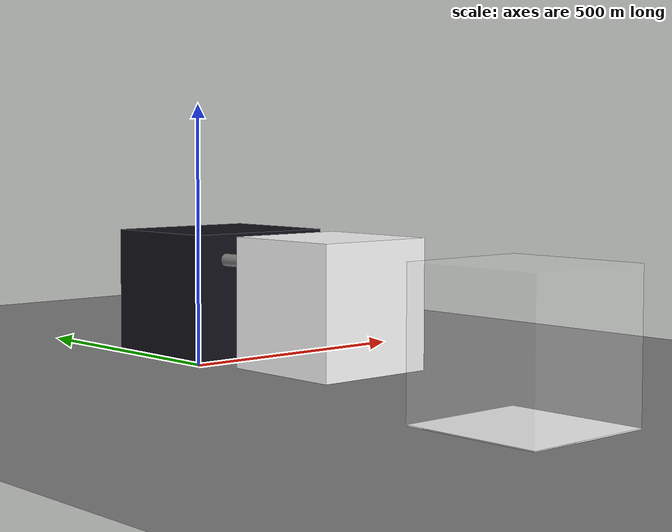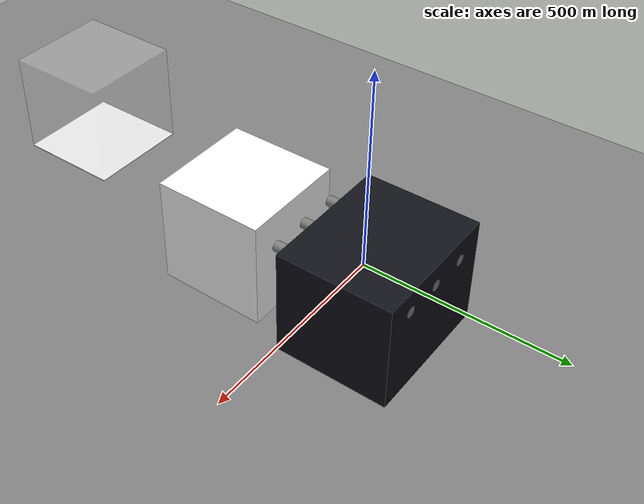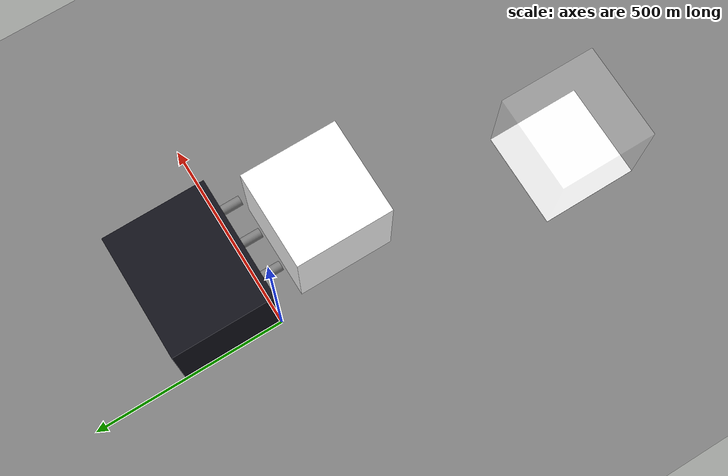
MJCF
<mujoco model="pushing_striker">
  <compiler inertiafromgeom="true" angle="radian" coordinate="local" meshdir="meshes/"/>
  <option timestep="0.01" gravity="0 0 0" iterations="20" integrator="Euler"/>

  <asset>
    <mesh file="push_box.stl"/>
    <mesh file="pushing_hand.stl"/>
    <mesh file="caster_wheel.stl"/>
    <mesh file="caster_middle.stl"/>
    <mesh file="caster_top.stl"/>

    <texture type="skybox" builtin="gradient" rgb1=".2 .3 .4" rgb2="1 1 1"
      width="100" height="100"/>
    <material name="MatViz" specular="1" shininess=".1" reflectance="0.5" rgba=".07 .07 .1 1"/>
  </asset>
  <default>
    <joint armature='0.04' damping="1" limited="true"/>
    <geom friction="0 0 0" density="300" margin="0.002" condim="1" contype="0" conaffinity="0"/>
    <default class ="vizNcoll">
      <geom material="MatViz" type="mesh" condim="3" contype="1" conaffinity="1" margin="0.001"/>
    </default>
  </default>

  <worldbody>
    <light diffuse=".5 .5 .5" pos="0 0 3" dir="0 0 -1"/>
    <geom name="table" type="plane" pos="0 0 0" size="1000 2000 1000" contype="1" conaffinity="1"/>

    <body name="push_box" childclass="vizNcoll" pos="0 0 0">
      <geom mesh="push_box"/>
    </body>
    <body name="pushing_hand_1" pos="68 260 200" axisangle="1 0 0 1.570796">
      <joint name="slider_1" type="slide" pos="0 0 0" axis="1 0 0" range="0 100" damping="1.0" limited="true"/>
      <geom mesh="pushing_hand" type="mesh"/>

    </body>
    <body name="pushing_hand_2" pos="158 260 200" axisangle="1 0 0 1.570796">
      <joint name="slider_2" type="slide" pos="0 0 0" axis="1 0 0" range="0 100" damping="1.0" limited="true"/>
      <geom mesh="pushing_hand" type="mesh"/>
    </body>
    <body name="pushing_hand_3" pos="248 260 200" axisangle="1 0 0 1.570796">
      <joint name="slider_3" type="slide" pos="0 0 0" axis="1 0 0" range="0 100" damping="1.0" limited="true"/>
      <geom mesh="pushing_hand" type="mesh"/>
    </body>

    <body name="object" pos="158 -200 125" >
      <geom type="box" rgba="1 1 1 1" pos="0 0 0" size="125 125 125" contype="1" conaffinity="0"/>
      <joint name="obj_slidey" armature="0.1" type="slide" pos="0 0 0" axis="0 1 0" range="-10321.3 10300" damping="0.5"/>
      <joint name="obj_slidex" armature="0.1" type="slide" pos="0 0 0" axis="1 0 0" range="-10321.3 10300" damping="0.5"/>
    </body>

    <body name="goal" pos="0.0 -800 0.0">
      <geom rgba="1. 1. 1. 0.1" pos="0 0 125" type="box" size="125 125 125" contype="0" conaffinity="0"/>
      <body name="coaster" pos="0 0 0">
        <geom rgba="1. 1. 1. 1" type="box" size="125 125 1" density='1000000' contype="0" conaffinity="0"/>
      </body>
      <joint name="goal_free" type="free" pos="0 0 0" limited="false" damping="0"/>
    </body>

  </worldbody>

  <actuator>
      <motor gear="100" joint="slider_1" name="slide"/>

  </actuator>

</mujoco>
